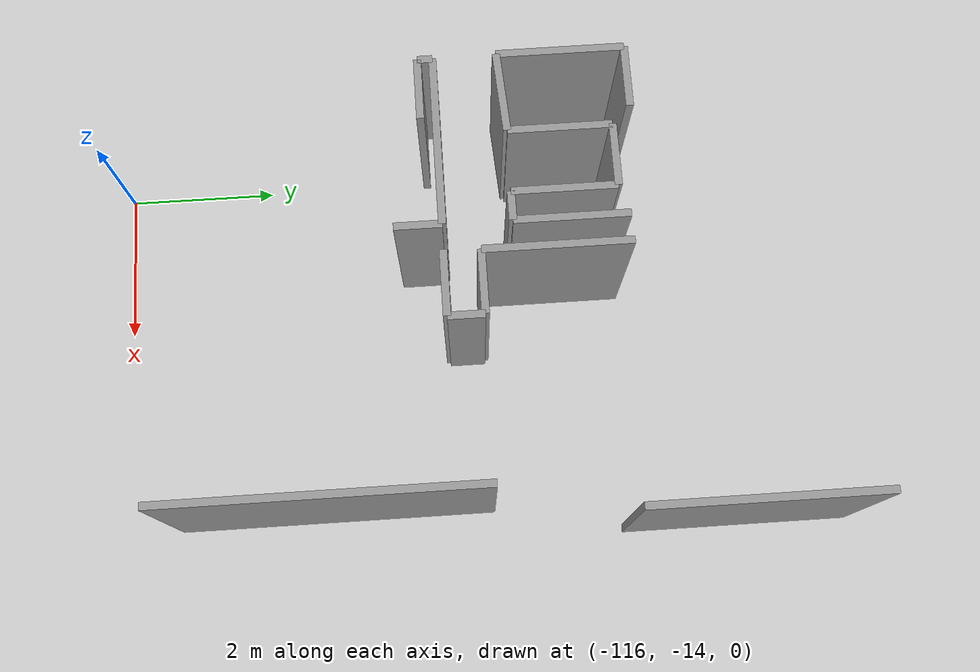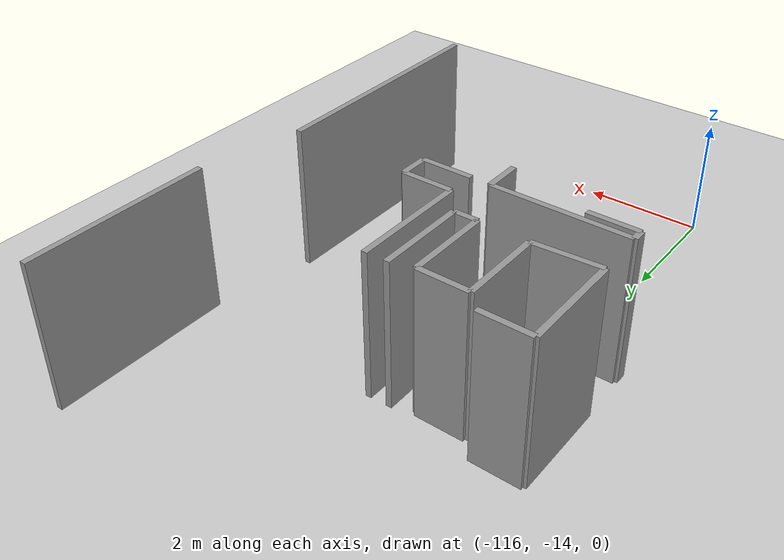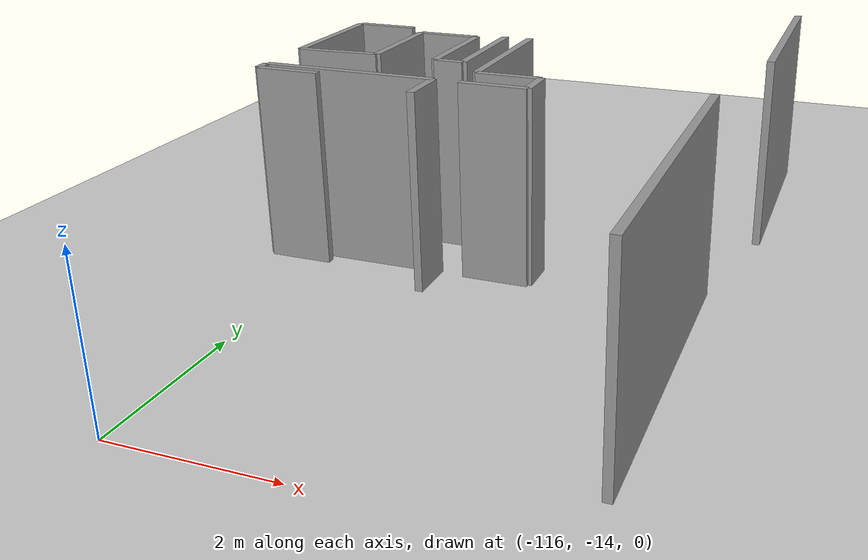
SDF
<sdf version="1.6">
 <world name="default">
  <model name="ground_plane">
   <static>1</static>
   <link name="link">
    <collision name="collision">
     <geometry><plane><normal>0 0 1</normal><size>100 100</size></plane></geometry>
     <surface><friction><ode><mu>100</mu><mu2>50</mu2></ode></friction></surface>
    </collision>
    <visual name="visual">
     <cast_shadows>0</cast_shadows>
     <geometry><plane><normal>0 0 1</normal><size>100 100</size></plane></geometry>
     <material>
      <script><uri>file://media/materials/scripts/gazebo.material</uri><name>Gazebo/Grey</name></script>
     </material>
    </visual>
   </link>
  </model>
  <model name="0510035343_A_40_1_102">
   <static>1</static>
   <link name="Wall_9">
    <collision name="Wall_9_Collision">
     <geometry><box><size>3.01628106255 0.1 2.5</size></box></geometry>
     <pose>1.50814053128 0 1.25 0 0 0</pose>
    </collision>
    <visual name="Wall_9_Visual">
     <pose>1.50814053128 0 1.25 0 0 0</pose>
     <geometry><box><size>3.01628106255 0.1 2.5</size></box></geometry>
     <material>
      <script><uri>file://media/materials/scripts/gazebo.material</uri><name>Gazebo/Grey</name></script>
      <ambient>1 1 1 1</ambient>
     </material>
    </visual>
    <pose>5.92186359453 -31.6991335809 0 0 0 1.57079632679</pose>
   </link>
   <link name="Wall_164">
    <collision name="Wall_164_Collision">
     <geometry><box><size>0.852581802025 0.1 2.5</size></box></geometry>
     <pose>0.426290901012 0 1.25 0 0 0</pose>
    </collision>
    <visual name="Wall_164_Visual">
     <pose>0.426290901012 0 1.25 0 0 0</pose>
     <geometry><box><size>0.852581802025 0.1 2.5</size></box></geometry>
     <material>
      <script><uri>file://media/materials/scripts/gazebo.material</uri><name>Gazebo/Grey</name></script>
      <ambient>1 1 1 1</ambient>
     </material>
    </visual>
    <pose>2.6179186899 -33.873750357 0 0 0 0.0</pose>
   </link>
   <link name="Wall_165">
    <collision name="Wall_165_Collision">
     <geometry><box><size>0.473007712082 0.1 2.5</size></box></geometry>
     <pose>0.236503856041 0 1.25 0 0 0</pose>
    </collision>
    <visual name="Wall_165_Visual">
     <pose>0.236503856041 0 1.25 0 0 0</pose>
     <geometry><box><size>0.473007712082 0.1 2.5</size></box></geometry>
     <material>
      <script><uri>file://media/materials/scripts/gazebo.material</uri><name>Gazebo/Grey</name></script>
      <ambient>1 1 1 1</ambient>
     </material>
    </visual>
    <pose>3.47050049192 -33.873750357 0 0 0 1.57079632679</pose>
   </link>
   <link name="Wall_166">
    <collision name="Wall_166_Collision">
     <geometry><box><size>0.829985083627 0.1 2.5</size></box></geometry>
     <pose>0.414992541813 0 1.25 0 0 0</pose>
    </collision>
    <visual name="Wall_166_Visual">
     <pose>0.414992541813 0 1.25 0 0 0</pose>
     <geometry><box><size>0.829985083627 0.1 2.5</size></box></geometry>
     <material>
      <script><uri>file://media/materials/scripts/gazebo.material</uri><name>Gazebo/Grey</name></script>
      <ambient>1 1 1 1</ambient>
     </material>
    </visual>
    <pose>3.47050049192 -33.400742645 0 0 0 3.14159265359</pose>
   </link>
   <link name="Wall_167">
    <collision name="Wall_167_Collision">
     <geometry><box><size>1.92173664667 0.1 2.5</size></box></geometry>
     <pose>0.960868323336 0 1.25 0 0 0</pose>
    </collision>
    <visual name="Wall_167_Visual">
     <pose>0.960868323336 0 1.25 0 0 0</pose>
     <geometry><box><size>1.92173664667 0.1 2.5</size></box></geometry>
     <material>
      <script><uri>file://media/materials/scripts/gazebo.material</uri><name>Gazebo/Grey</name></script>
      <ambient>1 1 1 1</ambient>
     </material>
    </visual>
    <pose>2.6405154083 -33.400742645 0 0 0 1.57079632679</pose>
   </link>
   <link name="Wall_171">
    <collision name="Wall_171_Collision">
     <geometry><box><size>4.2108603891 0.1 2.5</size></box></geometry>
     <pose>2.10543019455 0 1.25 0 0 0</pose>
    </collision>
    <visual name="Wall_171_Visual">
     <pose>2.10543019455 0 1.25 0 0 0</pose>
     <geometry><box><size>4.2108603891 0.1 2.5</size></box></geometry>
     <material>
      <script><uri>file://media/materials/scripts/gazebo.material</uri><name>Gazebo/Grey</name></script>
      <ambient>1 1 1 1</ambient>
     </material>
    </visual>
    <pose>5.54102002602 -33.4030277064 0 0 0 -1.57079632679</pose>
   </link>
   <link name="Wall_173">
    <collision name="Wall_173_Collision">
     <geometry><box><size>1.66631756006 0.1 2.5</size></box></geometry>
     <pose>0.833158780031 0 1.25 0 0 0</pose>
    </collision>
    <visual name="Wall_173_Visual">
     <pose>0.833158780031 0 1.25 0 0 0</pose>
     <geometry><box><size>1.66631756006 0.1 2.5</size></box></geometry>
     <material>
      <script><uri>file://media/materials/scripts/gazebo.material</uri><name>Gazebo/Grey</name></script>
      <ambient>1 1 1 1</ambient>
     </material>
    </visual>
    <pose>0.0 -33.0369100892 0 0 0 1.57079632679</pose>
   </link>
   <link name="Wall_174">
    <collision name="Wall_174_Collision">
     <geometry><box><size>0.833285727887 0.1 2.5</size></box></geometry>
     <pose>0.416642863944 0 1.25 0 0 0</pose>
    </collision>
    <visual name="Wall_174_Visual">
     <pose>0.416642863944 0 1.25 0 0 0</pose>
     <geometry><box><size>0.833285727887 0.1 2.5</size></box></geometry>
     <material>
      <script><uri>file://media/materials/scripts/gazebo.material</uri><name>Gazebo/Grey</name></script>
      <ambient>1 1 1 1</ambient>
     </material>
    </visual>
    <pose>0.0 -31.3705925291 0 0 0 0.0</pose>
   </link>
   <link name="Wall_180">
    <collision name="Wall_180_Collision">
     <geometry><box><size>1.48757497858 0.1 2.5</size></box></geometry>
     <pose>0.743787489289 0 1.25 0 0 0</pose>
    </collision>
    <visual name="Wall_180_Visual">
     <pose>0.743787489289 0 1.25 0 0 0</pose>
     <geometry><box><size>1.48757497858 0.1 2.5</size></box></geometry>
     <material>
      <script><uri>file://media/materials/scripts/gazebo.material</uri><name>Gazebo/Grey</name></script>
      <ambient>1 1 1 1</ambient>
     </material>
    </visual>
    <pose>2.28480751531 -31.4911929925 0 0 0 -1.57079632679</pose>
   </link>
   <link name="Wall_181">
    <collision name="Wall_181_Collision">
     <geometry><box><size>0.38363642134 0.1 2.5</size></box></geometry>
     <pose>0.19181821067 0 1.25 0 0 0</pose>
    </collision>
    <visual name="Wall_181_Visual">
     <pose>0.19181821067 0 1.25 0 0 0</pose>
     <geometry><box><size>0.38363642134 0.1 2.5</size></box></geometry>
     <material>
      <script><uri>file://media/materials/scripts/gazebo.material</uri><name>Gazebo/Grey</name></script>
      <ambient>1 1 1 1</ambient>
     </material>
    </visual>
    <pose>2.28480751531 -32.9787679711 0 0 0 3.14159265359</pose>
   </link>
   <link name="Wall_182">
    <collision name="Wall_182_Collision">
     <geometry><box><size>1.36189660097 0.1 2.5</size></box></geometry>
     <pose>0.680948300486 0 1.25 0 0 0</pose>
    </collision>
    <visual name="Wall_182_Visual">
     <pose>0.680948300486 0 1.25 0 0 0</pose>
     <geometry><box><size>1.36189660097 0.1 2.5</size></box></geometry>
     <material>
      <script><uri>file://media/materials/scripts/gazebo.material</uri><name>Gazebo/Grey</name></script>
      <ambient>1 1 1 1</ambient>
     </material>
    </visual>
    <pose>1.90117109397 -32.9787679711 0 0 0 1.57079632679</pose>
   </link>
   <link name="Wall_183">
    <collision name="Wall_183_Collision">
     <geometry><box><size>0.828461709353 0.1 2.5</size></box></geometry>
     <pose>0.414230854676 0 1.25 0 0 0</pose>
    </collision>
    <visual name="Wall_183_Visual">
     <pose>0.414230854676 0 1.25 0 0 0</pose>
     <geometry><box><size>0.828461709353 0.1 2.5</size></box></geometry>
     <material>
      <script><uri>file://media/materials/scripts/gazebo.material</uri><name>Gazebo/Grey</name></script>
      <ambient>1 1 1 1</ambient>
     </material>
    </visual>
    <pose>1.90117109397 -31.6168713701 0 0 0 3.14159265359</pose>
   </link>
   <link name="Wall_184">
    <collision name="Wall_184_Collision">
     <geometry><box><size>1.34920181535 0.1 2.5</size></box></geometry>
     <pose>0.674600907677 0 1.25 0 0 0</pose>
    </collision>
    <visual name="Wall_184_Visual">
     <pose>0.674600907677 0 1.25 0 0 0</pose>
     <geometry><box><size>1.34920181535 0.1 2.5</size></box></geometry>
     <material>
      <script><uri>file://media/materials/scripts/gazebo.material</uri><name>Gazebo/Grey</name></script>
      <ambient>1 1 1 1</ambient>
     </material>
    </visual>
    <pose>1.07270938462 -31.6168713701 0 0 0 -1.57079632679</pose>
   </link>
   <link name="Wall_185">
    <collision name="Wall_185_Collision">
     <geometry><box><size>1.07504571567 0.1 2.5</size></box></geometry>
     <pose>0.537522857836 0 1.25 0 0 0</pose>
    </collision>
    <visual name="Wall_185_Visual">
     <pose>0.537522857836 0 1.25 0 0 0</pose>
     <geometry><box><size>1.07504571567 0.1 2.5</size></box></geometry>
     <material>
      <script><uri>file://media/materials/scripts/gazebo.material</uri><name>Gazebo/Grey</name></script>
      <ambient>1 1 1 1</ambient>
     </material>
    </visual>
    <pose>1.07270938462 -32.9660731854 0 0 0 -3.075652887</pose>
   </link>
   <link name="Wall_189">
    <collision name="Wall_189_Collision">
     <geometry><box><size>0.823129899394 0.1 2.5</size></box></geometry>
     <pose>0.411564949697 0 1.25 0 0 0</pose>
    </collision>
    <visual name="Wall_189_Visual">
     <pose>0.411564949697 0 1.25 0 0 0</pose>
     <geometry><box><size>0.823129899394 0.1 2.5</size></box></geometry>
     <material>
      <script><uri>file://media/materials/scripts/gazebo.material</uri><name>Gazebo/Grey</name></script>
      <ambient>1 1 1 1</ambient>
     </material>
    </visual>
    <pose>0.839633120696 -34.0613792885 0 0 0 3.14159265359</pose>
   </link>
   <link name="Wall_190">
    <collision name="Wall_190_Collision">
     <geometry><box><size>0.197530864198 0.1 2.5</size></box></geometry>
     <pose>0.0987654320988 0 1.25 0 0 0</pose>
    </collision>
    <visual name="Wall_190_Visual">
     <pose>0.0987654320988 0 1.25 0 0 0</pose>
     <geometry><box><size>0.197530864198 0.1 2.5</size></box></geometry>
     <material>
      <script><uri>file://media/materials/scripts/gazebo.material</uri><name>Gazebo/Grey</name></script>
      <ambient>1 1 1 1</ambient>
     </material>
    </visual>
    <pose>0.0165032213019 -34.0613792885 0 0 0 1.57079632679</pose>
   </link>
   <link name="Wall_191">
    <collision name="Wall_191_Collision">
     <geometry><box><size>2.26119521407 0.1 2.5</size></box></geometry>
     <pose>1.13059760703 0 1.25 0 0 0</pose>
    </collision>
    <visual name="Wall_191_Visual">
     <pose>1.13059760703 0 1.25 0 0 0</pose>
     <geometry><box><size>2.26119521407 0.1 2.5</size></box></geometry>
     <material>
      <script><uri>file://media/materials/scripts/gazebo.material</uri><name>Gazebo/Grey</name></script>
      <ambient>1 1 1 1</ambient>
     </material>
    </visual>
    <pose>0.0165032213019 -33.8638484243 0 0 0 0.0</pose>
   </link>
   <link name="Wall_192">
    <collision name="Wall_192_Collision">
     <geometry><box><size>0.614681519566 0.1 2.5</size></box></geometry>
     <pose>0.307340759783 0 1.25 0 0 0</pose>
    </collision>
    <visual name="Wall_192_Visual">
     <pose>0.307340759783 0 1.25 0 0 0</pose>
     <geometry><box><size>0.614681519566 0.1 2.5</size></box></geometry>
     <material>
      <script><uri>file://media/materials/scripts/gazebo.material</uri><name>Gazebo/Grey</name></script>
      <ambient>1 1 1 1</ambient>
     </material>
    </visual>
    <pose>2.27769843537 -33.8638484243 0 0 0 -1.57079632679</pose>
   </link>
   <pose>-116.8 24.3141911835 0 0 0 0</pose>
  </model>
 </world>
</sdf>
